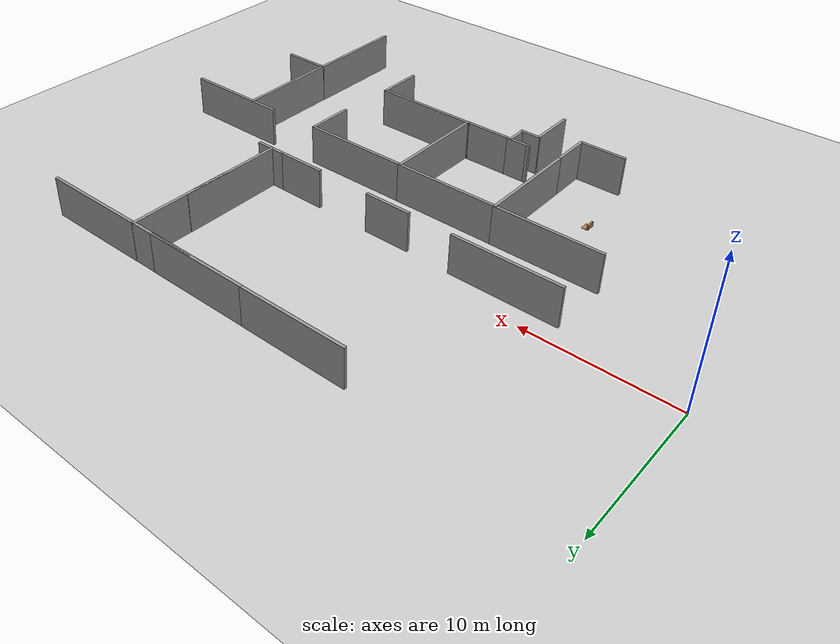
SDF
<sdf version="1.7">
 <world name="default">
  <model name="ground_plane">
   <static>1</static>
   <link name="link">
    <collision name="collision">
     <geometry><plane><normal>0 0 1</normal><size>100 100</size></plane></geometry>
     <surface>
      <contact><collide_bitmask>65535</collide_bitmask></contact>
      <friction><ode><mu>100</mu><mu2>50</mu2></ode></friction>
     </surface>
    </collision>
    <visual name="visual">
     <cast_shadows>0</cast_shadows>
     <geometry><plane><normal>0 0 1</normal><size>100 100</size></plane></geometry>
     <material>
      <script><uri>file://media/materials/scripts/gazebo.material</uri><name>Gazebo/Grey</name></script>
     </material>
    </visual>
   </link>
  </model>
  <model name="grey_wall_clone_1">
   <static>1</static>
   <link name="link">
    <pose>0 0 1.4 0 -0 0</pose>
    <collision name="collision"><geometry><box><size>7.5 0.2 2.8</size></box></geometry></collision>
    <visual name="visual">
     <cast_shadows>0</cast_shadows>
     <geometry><box><size>7.5 0.2 2.8</size></box></geometry>
     <material>
      <script>
       <uri>model://grey_wall/materials/scripts</uri>
       <uri>model://grey_wall/materials/textures</uri>
       <name>vrc/grey_wall</name>
      </script>
     </material>
    </visual>
   </link>
   <pose>17.6261 9.8454 0 0 -0 0</pose>
  </model>
  <model name="grey_wall_clone_1_clone_2">
   <static>1</static>
   <link name="link">
    <pose>0 0 1.4 0 -0 0</pose>
    <collision name="collision"><geometry><box><size>7.5 0.2 2.8</size></box></geometry></collision>
    <visual name="visual">
     <cast_shadows>0</cast_shadows>
     <geometry><box><size>7.5 0.2 2.8</size></box></geometry>
     <material>
      <script>
       <uri>model://grey_wall/materials/scripts</uri>
       <uri>model://grey_wall/materials/textures</uri>
       <name>vrc/grey_wall</name>
      </script>
     </material>
    </visual>
   </link>
   <pose>24.9982 9.83483 0 0 -0 0</pose>
  </model>
  <model name="grey_wall_clone_1_clone_clone">
   <static>1</static>
   <link name="link">
    <pose>0 0 1.4 0 -0 0</pose>
    <collision name="collision"><geometry><box><size>7.5 0.2 2.8</size></box></geometry></collision>
    <visual name="visual">
     <cast_shadows>0</cast_shadows>
     <geometry><box><size>7.5 0.2 2.8</size></box></geometry>
     <material>
      <script>
       <uri>model://grey_wall/materials/scripts</uri>
       <uri>model://grey_wall/materials/textures</uri>
       <name>vrc/grey_wall</name>
      </script>
     </material>
    </visual>
   </link>
   <pose>11.8089 -5.52914 0 0 -0 0</pose>
  </model>
  <model name="grey_wall_clone_2_clone_clone_clone_1">
   <static>1</static>
   <link name="link">
    <pose>0 0 1.4 0 -0 0</pose>
    <collision name="collision"><geometry><box><size>7.5 0.2 2.8</size></box></geometry></collision>
    <visual name="visual">
     <cast_shadows>0</cast_shadows>
     <geometry><box><size>7.5 0.2 2.8</size></box></geometry>
     <material>
      <script>
       <uri>model://grey_wall/materials/scripts</uri>
       <uri>model://grey_wall/materials/textures</uri>
       <name>vrc/grey_wall</name>
      </script>
     </material>
    </visual>
   </link>
   <pose>15.4556 -9.202 0 0 0 -1.5708</pose>
  </model>
  <model name="grey_wall_clone_2_clone_clone_clone_2">
   <static>1</static>
   <link name="link">
    <pose>0 0 1.4 0 -0 0</pose>
    <collision name="collision"><geometry><box><size>7.5 0.2 2.8</size></box></geometry></collision>
    <visual name="visual">
     <cast_shadows>0</cast_shadows>
     <geometry><box><size>7.5 0.2 2.8</size></box></geometry>
     <material>
      <script>
       <uri>model://grey_wall/materials/scripts</uri>
       <uri>model://grey_wall/materials/textures</uri>
       <name>vrc/grey_wall</name>
      </script>
     </material>
    </visual>
   </link>
   <pose>15.4624 -12.0058 0 0 0 -1.5708</pose>
  </model>
  <model name="grey_wall_clone_1_clone_clone_clone">
   <static>1</static>
   <link name="link">
    <pose>0 0 1.4 0 -0 0</pose>
    <collision name="collision"><geometry><box><size>7.5 0.2 2.8</size></box></geometry></collision>
    <visual name="visual">
     <cast_shadows>0</cast_shadows>
     <geometry><box><size>7.5 0.2 2.8</size></box></geometry>
     <material>
      <script>
       <uri>model://grey_wall/materials/scripts</uri>
       <uri>model://grey_wall/materials/textures</uri>
       <name>vrc/grey_wall</name>
      </script>
     </material>
    </visual>
   </link>
   <pose>19.0833 -5.54452 0 0 -0 0</pose>
  </model>
  <model name="grey_wall_clone_2_clone_clone_clone_1_clone">
   <static>1</static>
   <link name="link">
    <pose>0 0 1.4 0 -0 0</pose>
    <collision name="collision"><geometry><box><size>7.5 0.2 2.8</size></box></geometry></collision>
    <visual name="visual">
     <cast_shadows>0</cast_shadows>
     <geometry><box><size>7.5 0.2 2.8</size></box></geometry>
     <material>
      <script>
       <uri>model://grey_wall/materials/scripts</uri>
       <uri>model://grey_wall/materials/textures</uri>
       <name>vrc/grey_wall</name>
      </script>
     </material>
    </visual>
   </link>
   <pose>22.7127 -9.30618 0 0 0 -1.5708</pose>
  </model>
  <model name="half_grey_wall_clone_0_clone_0">
   <link name="link">
    <pose>0 0 1.4 0 -0 0</pose>
    <inertial>
     <mass>1</mass>
     <inertia><ixx>1</ixx><ixy>0</ixy><ixz>0</ixz><iyy>1</iyy><iyz>0</iyz><izz>1</izz></inertia>
    </inertial>
    <visual name="visual">
     <cast_shadows>0</cast_shadows>
     <geometry><box><size>3.3 0.2 2.8</size></box></geometry>
     <material>
      <script>
       <uri>model://grey_wall/materials/scripts</uri>
       <uri>model://grey_wall/materials/textures</uri>
       <name>vrc/grey_wall</name>
      </script>
      <shader type="pixel"><normal_map>__default__</normal_map></shader>
      <ambient>1 1 1 1</ambient>
      <diffuse>1 1 1 1</diffuse>
      <specular>0 0 0 1</specular>
      <emissive>0 0 0 1</emissive>
     </material>
    </visual>
    <collision name="collision">
     <geometry><box><size>7.5 0.2 2.8</size></box></geometry>
     <surface>
      <friction>
       <ode><mu>1</mu><mu2>1</mu2><fdir1>0 0 0</fdir1><slip1>0</slip1><slip2>0</slip2></ode>
       <torsional>
        <coefficient>1</coefficient>
        <patch_radius>0</patch_radius>
        <surface_radius>0</surface_radius>
        <use_patch_radius>1</use_patch_radius>
        <ode><slip>0</slip></ode>
       </torsional>
      </friction>
      <bounce><restitution_coefficient>0</restitution_coefficient><threshold>1e+06</threshold></bounce>
      <contact>
       <collide_without_contact>0</collide_without_contact>
       <collide_without_contact_bitmask>1</collide_without_contact_bitmask>
       <collide_bitmask>1</collide_bitmask>
       <ode>
        <soft_cfm>0</soft_cfm>
        <soft_erp>0.2</soft_erp>
        <kp>1e+13</kp>
        <kd>1</kd>
        <max_vel>0.01</max_vel>
        <min_depth>0</min_depth>
       </ode>
       <bullet>
        <split_impulse>1</split_impulse>
        <split_impulse_penetration_threshold>-0.01</split_impulse_penetration_threshold>
        <soft_cfm>0</soft_cfm>
        <soft_erp>0.2</soft_erp>
        <kp>1e+13</kp>
        <kd>1</kd>
       </bullet>
      </contact>
     </surface>
    </collision>
   </link>
   <static>1</static>
   <pose>21.1071 -12.9684 0 0 -0 0</pose>
  </model>
  <model name="grey_wall_clone_1_clone_clone_clone_clone">
   <static>1</static>
   <link name="link">
    <pose>0 0 1.4 0 -0 0</pose>
    <collision name="collision"><geometry><box><size>7.5 0.2 2.8</size></box></geometry></collision>
    <visual name="visual">
     <cast_shadows>0</cast_shadows>
     <geometry><box><size>7.5 0.2 2.8</size></box></geometry>
     <material>
      <script>
       <uri>model://grey_wall/materials/scripts</uri>
       <uri>model://grey_wall/materials/textures</uri>
       <name>vrc/grey_wall</name>
      </script>
     </material>
    </visual>
   </link>
   <pose>26.5144 -5.5539 0 0 -0 0</pose>
  </model>
  <model name="grey_wall_clone_1_clone_clone_clone_clone_clone">
   <static>1</static>
   <link name="link">
    <pose>0 0 1.4 0 -0 0</pose>
    <collision name="collision"><geometry><box><size>7.5 0.2 2.8</size></box></geometry></collision>
    <visual name="visual">
     <cast_shadows>0</cast_shadows>
     <geometry><box><size>7.5 0.2 2.8</size></box></geometry>
     <material>
      <script>
       <uri>model://grey_wall/materials/scripts</uri>
       <uri>model://grey_wall/materials/textures</uri>
       <name>vrc/grey_wall</name>
      </script>
     </material>
    </visual>
   </link>
   <pose>26.2777 -12.9529 0 0 -0 0</pose>
  </model>
  <model name="grey_wall_clone_1_clone_2_clone">
   <static>1</static>
   <link name="link">
    <pose>0 0 1.4 0 -0 0</pose>
    <collision name="collision"><geometry><box><size>7.5 0.2 2.8</size></box></geometry></collision>
    <visual name="visual">
     <cast_shadows>0</cast_shadows>
     <geometry><box><size>7.5 0.2 2.8</size></box></geometry>
     <material>
      <script>
       <uri>model://grey_wall/materials/scripts</uri>
       <uri>model://grey_wall/materials/textures</uri>
       <name>vrc/grey_wall</name>
      </script>
     </material>
    </visual>
   </link>
   <pose>26.6844 9.82085 0 0 -0 0</pose>
  </model>
  <model name="grey_wall_clone_2_clone_clone_clone_1_clone_clone_0">
   <static>1</static>
   <link name="link">
    <pose>0 0 1.4 0 -0 0</pose>
    <collision name="collision"><geometry><box><size>7.5 0.2 2.8</size></box></geometry></collision>
    <visual name="visual">
     <cast_shadows>0</cast_shadows>
     <geometry><box><size>7.5 0.2 2.8</size></box></geometry>
     <material>
      <script>
       <uri>model://grey_wall/materials/scripts</uri>
       <uri>model://grey_wall/materials/textures</uri>
       <name>vrc/grey_wall</name>
      </script>
     </material>
    </visual>
   </link>
   <pose>30.3377 6.16971 0 0 0 -1.5708</pose>
  </model>
  <model name="grey_wall_clone_2_clone_clone_clone_1_clone_clone_0_clone">
   <static>1</static>
   <link name="link">
    <pose>0 0 1.4 0 -0 0</pose>
    <collision name="collision"><geometry><box><size>7.5 0.2 2.8</size></box></geometry></collision>
    <visual name="visual">
     <cast_shadows>0</cast_shadows>
     <geometry><box><size>7.5 0.2 2.8</size></box></geometry>
     <material>
      <script>
       <uri>model://grey_wall/materials/scripts</uri>
       <uri>model://grey_wall/materials/textures</uri>
       <name>vrc/grey_wall</name>
      </script>
     </material>
    </visual>
   </link>
   <pose>30.3126 2.01477 0 0 0 -1.5708</pose>
  </model>
  <model name="grey_wall_clone_2_clone_clone_clone_1_clone_clone_0_clone_clone">
   <static>1</static>
   <link name="link">
    <pose>0 0 1.4 0 -0 0</pose>
    <collision name="collision"><geometry><box><size>7.5 0.2 2.8</size></box></geometry></collision>
    <visual name="visual">
     <cast_shadows>0</cast_shadows>
     <geometry><box><size>7.5 0.2 2.8</size></box></geometry>
     <material>
      <script>
       <uri>model://grey_wall/materials/scripts</uri>
       <uri>model://grey_wall/materials/textures</uri>
       <name>vrc/grey_wall</name>
      </script>
     </material>
    </visual>
   </link>
   <pose>36.0398 -9.16876 0 0 0 -1.5708</pose>
  </model>
  <model name="grey_wall_clone_1_clone_2_clone_clone">
   <static>1</static>
   <link name="link">
    <pose>0 0 1.4 0 -0 0</pose>
    <collision name="collision"><geometry><box><size>7.5 0.2 2.8</size></box></geometry></collision>
    <visual name="visual">
     <cast_shadows>0</cast_shadows>
     <geometry><box><size>7.5 0.2 2.8</size></box></geometry>
     <material>
      <script>
       <uri>model://grey_wall/materials/scripts</uri>
       <uri>model://grey_wall/materials/textures</uri>
       <name>vrc/grey_wall</name>
      </script>
     </material>
    </visual>
   </link>
   <pose>34.1518 9.82952 0 0 -0 0</pose>
  </model>
  <model name="grey_wall_clone_2_clone_clone_clone_1_clone_clone_0_clone_clone_clone">
   <static>1</static>
   <link name="link">
    <pose>0 0 1.4 0 -0 0</pose>
    <collision name="collision"><geometry><box><size>7.5 0.2 2.8</size></box></geometry></collision>
    <visual name="visual">
     <cast_shadows>0</cast_shadows>
     <geometry><box><size>7.5 0.2 2.8</size></box></geometry>
     <material>
      <script>
       <uri>model://grey_wall/materials/scripts</uri>
       <uri>model://grey_wall/materials/textures</uri>
       <name>vrc/grey_wall</name>
      </script>
     </material>
    </visual>
   </link>
   <pose>36.0239 -16.5759 0 0 0 -1.5708</pose>
  </model>
  <model name="fixed_half_clone_9">
   <link name="link">
    <pose>0 0 1.4 0 -0 0</pose>
    <inertial>
     <mass>1</mass>
     <inertia><ixx>1</ixx><ixy>0</ixy><ixz>0</ixz><iyy>1</iyy><iyz>0</iyz><izz>1</izz></inertia>
    </inertial>
    <visual name="visual">
     <cast_shadows>0</cast_shadows>
     <geometry><box><size>3.3 0.2 2.8</size></box></geometry>
     <material>
      <script>
       <uri>model://grey_wall/materials/scripts</uri>
       <uri>model://grey_wall/materials/textures</uri>
       <name>vrc/grey_wall</name>
      </script>
      <shader type="pixel"><normal_map>__default__</normal_map></shader>
      <ambient>1 1 1 1</ambient>
      <diffuse>1 1 1 1</diffuse>
      <specular>0 0 0 1</specular>
      <emissive>0 0 0 1</emissive>
     </material>
    </visual>
    <collision name="collision">
     <geometry><box><size>3.3 0.2 2.8</size></box></geometry>
     <surface>
      <friction>
       <ode><mu>1</mu><mu2>1</mu2><fdir1>0 0 0</fdir1><slip1>0</slip1><slip2>0</slip2></ode>
       <torsional>
        <coefficient>1</coefficient>
        <patch_radius>0</patch_radius>
        <surface_radius>0</surface_radius>
        <use_patch_radius>1</use_patch_radius>
        <ode><slip>0</slip></ode>
       </torsional>
      </friction>
      <bounce><restitution_coefficient>0</restitution_coefficient><threshold>1e+06</threshold></bounce>
      <contact>
       <collide_without_contact>0</collide_without_contact>
       <collide_without_contact_bitmask>1</collide_without_contact_bitmask>
       <collide_bitmask>1</collide_bitmask>
       <ode>
        <soft_cfm>0</soft_cfm>
        <soft_erp>0.2</soft_erp>
        <kp>1e+13</kp>
        <kd>1</kd>
        <max_vel>0.01</max_vel>
        <min_depth>0</min_depth>
       </ode>
       <bullet>
        <split_impulse>1</split_impulse>
        <split_impulse_penetration_threshold>-0.01</split_impulse_penetration_threshold>
        <soft_cfm>0</soft_cfm>
        <soft_erp>0.2</soft_erp>
        <kp>1e+13</kp>
        <kd>1</kd>
       </bullet>
      </contact>
     </surface>
    </collision>
   </link>
   <static>1</static>
   <pose>17.9251 -16.0442 0 0 0 -1.5708</pose>
  </model>
  <model name="fixed_half_clone_11">
   <link name="link">
    <pose>0 0 1.4 0 -0 0</pose>
    <inertial>
     <mass>1</mass>
     <inertia><ixx>1</ixx><ixy>0</ixy><ixz>0</ixz><iyy>1</iyy><iyz>0</iyz><izz>1</izz></inertia>
    </inertial>
    <visual name="visual">
     <cast_shadows>0</cast_shadows>
     <geometry><box><size>3.3 0.2 2.8</size></box></geometry>
     <material>
      <script>
       <uri>model://grey_wall/materials/scripts</uri>
       <uri>model://grey_wall/materials/textures</uri>
       <name>vrc/grey_wall</name>
      </script>
      <shader type="pixel"><normal_map>__default__</normal_map></shader>
      <ambient>1 1 1 1</ambient>
      <diffuse>1 1 1 1</diffuse>
      <specular>0 0 0 1</specular>
      <emissive>0 0 0 1</emissive>
     </material>
    </visual>
    <collision name="collision">
     <geometry><box><size>3.3 0.2 2.8</size></box></geometry>
     <surface>
      <friction>
       <ode><mu>1</mu><mu2>1</mu2><fdir1>0 0 0</fdir1><slip1>0</slip1><slip2>0</slip2></ode>
       <torsional>
        <coefficient>1</coefficient>
        <patch_radius>0</patch_radius>
        <surface_radius>0</surface_radius>
        <use_patch_radius>1</use_patch_radius>
        <ode><slip>0</slip></ode>
       </torsional>
      </friction>
      <bounce><restitution_coefficient>0</restitution_coefficient><threshold>1e+06</threshold></bounce>
      <contact>
       <collide_without_contact>0</collide_without_contact>
       <collide_without_contact_bitmask>1</collide_without_contact_bitmask>
       <collide_bitmask>1</collide_bitmask>
       <ode>
        <soft_cfm>0</soft_cfm>
        <soft_erp>0.2</soft_erp>
        <kp>1e+13</kp>
        <kd>1</kd>
        <max_vel>0.01</max_vel>
        <min_depth>0</min_depth>
       </ode>
       <bullet>
        <split_impulse>1</split_impulse>
        <split_impulse_penetration_threshold>-0.01</split_impulse_penetration_threshold>
        <soft_cfm>0</soft_cfm>
        <soft_erp>0.2</soft_erp>
        <kp>1e+13</kp>
        <kd>1</kd>
       </bullet>
      </contact>
     </surface>
    </collision>
   </link>
   <static>1</static>
   <pose>30.188 -7.18227 0 0 0 -1.5708</pose>
  </model>
  <model name="fixed_half_clone_12">
   <link name="link">
    <pose>0 0 1.4 0 -0 0</pose>
    <inertial>
     <mass>1</mass>
     <inertia><ixx>1</ixx><ixy>0</ixy><ixz>0</ixz><iyy>1</iyy><iyz>0</iyz><izz>1</izz></inertia>
    </inertial>
    <visual name="visual">
     <cast_shadows>0</cast_shadows>
     <geometry><box><size>3.3 0.2 2.8</size></box></geometry>
     <material>
      <script>
       <uri>model://grey_wall/materials/scripts</uri>
       <uri>model://grey_wall/materials/textures</uri>
       <name>vrc/grey_wall</name>
      </script>
      <shader type="pixel"><normal_map>__default__</normal_map></shader>
      <ambient>1 1 1 1</ambient>
      <diffuse>1 1 1 1</diffuse>
      <specular>0 0 0 1</specular>
      <emissive>0 0 0 1</emissive>
     </material>
    </visual>
    <collision name="collision">
     <geometry><box><size>3.3 0.2 2.8</size></box></geometry>
     <surface>
      <friction>
       <ode><mu>1</mu><mu2>1</mu2><fdir1>0 0 0</fdir1><slip1>0</slip1><slip2>0</slip2></ode>
       <torsional>
        <coefficient>1</coefficient>
        <patch_radius>0</patch_radius>
        <surface_radius>0</surface_radius>
        <use_patch_radius>1</use_patch_radius>
        <ode><slip>0</slip></ode>
       </torsional>
      </friction>
      <bounce><restitution_coefficient>0</restitution_coefficient><threshold>1e+06</threshold></bounce>
      <contact>
       <collide_without_contact>0</collide_without_contact>
       <collide_without_contact_bitmask>1</collide_without_contact_bitmask>
       <collide_bitmask>1</collide_bitmask>
       <ode>
        <soft_cfm>0</soft_cfm>
        <soft_erp>0.2</soft_erp>
        <kp>1e+13</kp>
        <kd>1</kd>
        <max_vel>0.01</max_vel>
        <min_depth>0</min_depth>
       </ode>
       <bullet>
        <split_impulse>1</split_impulse>
        <split_impulse_penetration_threshold>-0.01</split_impulse_penetration_threshold>
        <soft_cfm>0</soft_cfm>
        <soft_erp>0.2</soft_erp>
        <kp>1e+13</kp>
        <kd>1</kd>
       </bullet>
      </contact>
     </surface>
    </collision>
   </link>
   <static>1</static>
   <pose>29.9162 -14.5557 0 0 0 -1.5708</pose>
  </model>
  <model name="fixed_half_clone_17_clone_9">
   <link name="link">
    <pose>0 0 1.4 0 -0 0</pose>
    <inertial>
     <mass>1</mass>
     <inertia><ixx>1</ixx><ixy>0</ixy><ixz>0</ixz><iyy>1</iyy><iyz>0</iyz><izz>1</izz></inertia>
    </inertial>
    <visual name="visual">
     <cast_shadows>0</cast_shadows>
     <geometry><box><size>3.3 0.2 2.8</size></box></geometry>
     <material>
      <script>
       <uri>model://grey_wall/materials/scripts</uri>
       <uri>model://grey_wall/materials/textures</uri>
       <name>vrc/grey_wall</name>
      </script>
      <shader type="pixel"><normal_map>__default__</normal_map></shader>
      <ambient>1 1 1 1</ambient>
      <diffuse>1 1 1 1</diffuse>
      <specular>0 0 0 1</specular>
      <emissive>0 0 0 1</emissive>
     </material>
    </visual>
    <collision name="collision">
     <geometry><box><size>3.3 0.2 2.8</size></box></geometry>
     <surface>
      <friction>
       <ode><mu>1</mu><mu2>1</mu2><fdir1>0 0 0</fdir1><slip1>0</slip1><slip2>0</slip2></ode>
       <torsional>
        <coefficient>1</coefficient>
        <patch_radius>0</patch_radius>
        <surface_radius>0</surface_radius>
        <use_patch_radius>1</use_patch_radius>
        <ode><slip>0</slip></ode>
       </torsional>
      </friction>
      <bounce><restitution_coefficient>0</restitution_coefficient><threshold>1e+06</threshold></bounce>
      <contact>
       <collide_without_contact>0</collide_without_contact>
       <collide_without_contact_bitmask>1</collide_without_contact_bitmask>
       <collide_bitmask>1</collide_bitmask>
       <ode>
        <soft_cfm>0</soft_cfm>
        <soft_erp>0.2</soft_erp>
        <kp>1e+13</kp>
        <kd>1</kd>
        <max_vel>0.01</max_vel>
        <min_depth>0</min_depth>
       </ode>
       <bullet>
        <split_impulse>1</split_impulse>
        <split_impulse_penetration_threshold>-0.01</split_impulse_penetration_threshold>
        <soft_cfm>0</soft_cfm>
        <soft_erp>0.2</soft_erp>
        <kp>1e+13</kp>
        <kd>1</kd>
       </bullet>
      </contact>
     </surface>
    </collision>
   </link>
   <static>1</static>
   <pose>37.7185 -12.8413 0 0 -0 3.14159</pose>
  </model>
  <model name="grey_wall_clone_1_clone_2_clone_clone_clone_clone_clone">
   <static>1</static>
   <link name="link">
    <pose>0 0 1.4 0 -0 0</pose>
    <collision name="collision"><geometry><box><size>7.5 0.2 2.8</size></box></geometry></collision>
    <visual name="visual">
     <cast_shadows>0</cast_shadows>
     <geometry><box><size>7.5 0.2 2.8</size></box></geometry>
     <material>
      <script>
       <uri>model://grey_wall/materials/scripts</uri>
       <uri>model://grey_wall/materials/textures</uri>
       <name>vrc/grey_wall</name>
      </script>
     </material>
    </visual>
   </link>
   <pose>37.7088 -5.46304 0 0 -0 0</pose>
  </model>
  <model name="half_wall_clone_0_clone_clone_clone_9">
   <link name="link">
    <pose>0 0 1.4 0 -0 0</pose>
    <inertial>
     <mass>1</mass>
     <inertia><ixx>1</ixx><ixy>0</ixy><ixz>0</ixz><iyy>1</iyy><iyz>0</iyz><izz>1</izz></inertia>
    </inertial>
    <visual name="visual">
     <cast_shadows>0</cast_shadows>
     <geometry><box><size>1.5 0.2 2.8</size></box></geometry>
     <material>
      <script>
       <uri>model://grey_wall/materials/scripts</uri>
       <uri>model://grey_wall/materials/textures</uri>
       <name>vrc/grey_wall</name>
      </script>
      <shader type="pixel"><normal_map>__default__</normal_map></shader>
      <ambient>1 1 1 1</ambient>
      <diffuse>1 1 1 1</diffuse>
      <specular>0 0 0 1</specular>
      <emissive>0 0 0 1</emissive>
     </material>
    </visual>
    <collision name="collision">
     <geometry><box><size>1.5 0.2 2.8</size></box></geometry>
     <surface>
      <friction>
       <ode><mu>1</mu><mu2>1</mu2><fdir1>0 0 0</fdir1><slip1>0</slip1><slip2>0</slip2></ode>
       <torsional>
        <coefficient>1</coefficient>
        <patch_radius>0</patch_radius>
        <surface_radius>0</surface_radius>
        <use_patch_radius>1</use_patch_radius>
        <ode><slip>0</slip></ode>
       </torsional>
      </friction>
      <bounce><restitution_coefficient>0</restitution_coefficient><threshold>1e+06</threshold></bounce>
      <contact>
       <collide_without_contact>0</collide_without_contact>
       <collide_without_contact_bitmask>1</collide_without_contact_bitmask>
       <collide_bitmask>1</collide_bitmask>
       <ode>
        <soft_cfm>0</soft_cfm>
        <soft_erp>0.2</soft_erp>
        <kp>1e+13</kp>
        <kd>1</kd>
        <max_vel>0.01</max_vel>
        <min_depth>0</min_depth>
       </ode>
       <bullet>
        <split_impulse>1</split_impulse>
        <split_impulse_penetration_threshold>-0.01</split_impulse_penetration_threshold>
        <soft_cfm>0</soft_cfm>
        <soft_erp>0.2</soft_erp>
        <kp>1e+13</kp>
        <kd>1</kd>
       </bullet>
      </contact>
     </surface>
    </collision>
   </link>
   <static>1</static>
   <pose>19.2261 -13.6716 0 0 -0 1.57079</pose>
  </model>
  <model name="half_wall_clone_0_clone_clone_clone_9_clone">
   <link name="link">
    <pose>0 0 1.4 0 -0 0</pose>
    <inertial>
     <mass>1</mass>
     <inertia><ixx>1</ixx><ixy>0</ixy><ixz>0</ixz><iyy>1</iyy><iyz>0</iyz><izz>1</izz></inertia>
    </inertial>
    <visual name="visual">
     <cast_shadows>0</cast_shadows>
     <geometry><box><size>1.5 0.2 2.8</size></box></geometry>
     <material>
      <script>
       <uri>model://grey_wall/materials/scripts</uri>
       <uri>model://grey_wall/materials/textures</uri>
       <name>vrc/grey_wall</name>
      </script>
      <shader type="pixel"><normal_map>__default__</normal_map></shader>
      <ambient>1 1 1 1</ambient>
      <diffuse>1 1 1 1</diffuse>
      <specular>0 0 0 1</specular>
      <emissive>0 0 0 1</emissive>
     </material>
    </visual>
    <collision name="collision">
     <geometry><box><size>1.5 0.2 2.8</size></box></geometry>
     <surface>
      <friction>
       <ode><mu>1</mu><mu2>1</mu2><fdir1>0 0 0</fdir1><slip1>0</slip1><slip2>0</slip2></ode>
       <torsional>
        <coefficient>1</coefficient>
        <patch_radius>0</patch_radius>
        <surface_radius>0</surface_radius>
        <use_patch_radius>1</use_patch_radius>
        <ode><slip>0</slip></ode>
       </torsional>
      </friction>
      <bounce><restitution_coefficient>0</restitution_coefficient><threshold>1e+06</threshold></bounce>
      <contact>
       <collide_without_contact>0</collide_without_contact>
       <collide_without_contact_bitmask>1</collide_without_contact_bitmask>
       <collide_bitmask>1</collide_bitmask>
       <ode>
        <soft_cfm>0</soft_cfm>
        <soft_erp>0.2</soft_erp>
        <kp>1e+13</kp>
        <kd>1</kd>
        <max_vel>0.01</max_vel>
        <min_depth>0</min_depth>
       </ode>
       <bullet>
        <split_impulse>1</split_impulse>
        <split_impulse_penetration_threshold>-0.01</split_impulse_penetration_threshold>
        <soft_cfm>0</soft_cfm>
        <soft_erp>0.2</soft_erp>
        <kp>1e+13</kp>
        <kd>1</kd>
       </bullet>
      </contact>
     </surface>
    </collision>
   </link>
   <static>1</static>
   <pose>18.7163 -12.9556 0 0 -0 3.14159</pose>
  </model>
  <model name="half_wall_clone_0_clone_clone_clone_9_clone_0">
   <link name="link">
    <pose>0 0 1.4 0 -0 0</pose>
    <inertial>
     <mass>1</mass>
     <inertia><ixx>1</ixx><ixy>0</ixy><ixz>0</ixz><iyy>1</iyy><iyz>0</iyz><izz>1</izz></inertia>
    </inertial>
    <visual name="visual">
     <cast_shadows>0</cast_shadows>
     <geometry><box><size>1.5 0.2 2.8</size></box></geometry>
     <material>
      <script>
       <uri>model://grey_wall/materials/scripts</uri>
       <uri>model://grey_wall/materials/textures</uri>
       <name>vrc/grey_wall</name>
      </script>
      <shader type="pixel"><normal_map>__default__</normal_map></shader>
      <ambient>1 1 1 1</ambient>
      <diffuse>1 1 1 1</diffuse>
      <specular>0 0 0 1</specular>
      <emissive>0 0 0 1</emissive>
     </material>
    </visual>
    <collision name="collision">
     <geometry><box><size>1.5 0.2 2.8</size></box></geometry>
     <surface>
      <friction>
       <ode><mu>1</mu><mu2>1</mu2><fdir1>0 0 0</fdir1><slip1>0</slip1><slip2>0</slip2></ode>
       <torsional>
        <coefficient>1</coefficient>
        <patch_radius>0</patch_radius>
        <surface_radius>0</surface_radius>
        <use_patch_radius>1</use_patch_radius>
        <ode><slip>0</slip></ode>
       </torsional>
      </friction>
      <bounce><restitution_coefficient>0</restitution_coefficient><threshold>1e+06</threshold></bounce>
      <contact>
       <collide_without_contact>0</collide_without_contact>
       <collide_without_contact_bitmask>1</collide_without_contact_bitmask>
       <collide_bitmask>1</collide_bitmask>
       <ode>
        <soft_cfm>0</soft_cfm>
        <soft_erp>0.2</soft_erp>
        <kp>1e+13</kp>
        <kd>1</kd>
        <max_vel>0.01</max_vel>
        <min_depth>0</min_depth>
       </ode>
       <bullet>
        <split_impulse>1</split_impulse>
        <split_impulse_penetration_threshold>-0.01</split_impulse_penetration_threshold>
        <soft_cfm>0</soft_cfm>
        <soft_erp>0.2</soft_erp>
        <kp>1e+13</kp>
        <kd>1</kd>
       </bullet>
      </contact>
     </surface>
    </collision>
   </link>
   <static>1</static>
   <pose>18.4998 -12.9569 0 0 -0 3.14159</pose>
  </model>
  <model name="half_wall_clone_0_clone_clone_clone_9_clone_1">
   <link name="link">
    <pose>0 0 1.4 0 -0 0</pose>
    <inertial>
     <mass>1</mass>
     <inertia><ixx>1</ixx><ixy>0</ixy><ixz>0</ixz><iyy>1</iyy><iyz>0</iyz><izz>1</izz></inertia>
    </inertial>
    <visual name="visual">
     <cast_shadows>0</cast_shadows>
     <geometry><box><size>1.5 0.2 2.8</size></box></geometry>
     <material>
      <script>
       <uri>model://grey_wall/materials/scripts</uri>
       <uri>model://grey_wall/materials/textures</uri>
       <name>vrc/grey_wall</name>
      </script>
      <shader type="pixel"><normal_map>__default__</normal_map></shader>
      <ambient>1 1 1 1</ambient>
      <diffuse>1 1 1 1</diffuse>
      <specular>0 0 0 1</specular>
      <emissive>0 0 0 1</emissive>
     </material>
    </visual>
    <collision name="collision">
     <geometry><box><size>1.5 0.2 2.8</size></box></geometry>
     <surface>
      <friction>
       <ode><mu>1</mu><mu2>1</mu2><fdir1>0 0 0</fdir1><slip1>0</slip1><slip2>0</slip2></ode>
       <torsional>
        <coefficient>1</coefficient>
        <patch_radius>0</patch_radius>
        <surface_radius>0</surface_radius>
        <use_patch_radius>1</use_patch_radius>
        <ode><slip>0</slip></ode>
       </torsional>
      </friction>
      <bounce><restitution_coefficient>0</restitution_coefficient><threshold>1e+06</threshold></bounce>
      <contact>
       <collide_without_contact>0</collide_without_contact>
       <collide_without_contact_bitmask>1</collide_without_contact_bitmask>
       <collide_bitmask>1</collide_bitmask>
       <ode>
        <soft_cfm>0</soft_cfm>
        <soft_erp>0.2</soft_erp>
        <kp>1e+13</kp>
        <kd>1</kd>
        <max_vel>0.01</max_vel>
        <min_depth>0</min_depth>
       </ode>
       <bullet>
        <split_impulse>1</split_impulse>
        <split_impulse_penetration_threshold>-0.01</split_impulse_penetration_threshold>
        <soft_cfm>0</soft_cfm>
        <soft_erp>0.2</soft_erp>
        <kp>1e+13</kp>
        <kd>1</kd>
       </bullet>
      </contact>
     </surface>
    </collision>
   </link>
   <static>1</static>
   <pose>18.5773 -14.3842 0 0 -0 3.14159</pose>
  </model>
  <model name="fixed_half_clone_19_clone">
   <link name="link">
    <pose>0 0 1.4 0 -0 0</pose>
    <inertial>
     <mass>1</mass>
     <inertia><ixx>1</ixx><ixy>0</ixy><ixz>0</ixz><iyy>1</iyy><iyz>0</iyz><izz>1</izz></inertia>
    </inertial>
    <visual name="visual">
     <cast_shadows>0</cast_shadows>
     <geometry><box><size>3.3 0.2 2.8</size></box></geometry>
     <material>
      <script>
       <uri>model://grey_wall/materials/scripts</uri>
       <uri>model://grey_wall/materials/textures</uri>
       <name>vrc/grey_wall</name>
      </script>
      <shader type="pixel"><normal_map>__default__</normal_map></shader>
      <ambient>1 1 1 1</ambient>
      <diffuse>1 1 1 1</diffuse>
      <specular>0 0 0 1</specular>
      <emissive>0 0 0 1</emissive>
     </material>
    </visual>
    <collision name="collision">
     <geometry><box><size>3.3 0.2 2.8</size></box></geometry>
     <surface>
      <friction>
       <ode><mu>1</mu><mu2>1</mu2><fdir1>0 0 0</fdir1><slip1>0</slip1><slip2>0</slip2></ode>
       <torsional>
        <coefficient>1</coefficient>
        <patch_radius>0</patch_radius>
        <surface_radius>0</surface_radius>
        <use_patch_radius>1</use_patch_radius>
        <ode><slip>0</slip></ode>
       </torsional>
      </friction>
      <bounce><restitution_coefficient>0</restitution_coefficient><threshold>1e+06</threshold></bounce>
      <contact>
       <collide_without_contact>0</collide_without_contact>
       <collide_without_contact_bitmask>1</collide_without_contact_bitmask>
       <collide_bitmask>1</collide_bitmask>
       <ode>
        <soft_cfm>0</soft_cfm>
        <soft_erp>0.2</soft_erp>
        <kp>1e+13</kp>
        <kd>1</kd>
        <max_vel>0.01</max_vel>
        <min_depth>0</min_depth>
       </ode>
       <bullet>
        <split_impulse>1</split_impulse>
        <split_impulse_penetration_threshold>-0.01</split_impulse_penetration_threshold>
        <soft_cfm>0</soft_cfm>
        <soft_erp>0.2</soft_erp>
        <kp>1e+13</kp>
        <kd>1</kd>
       </bullet>
      </contact>
     </surface>
    </collision>
   </link>
   <static>1</static>
   <pose>29.8404 -1.64376 0 0 -0 3.14159</pose>
  </model>
  <model name="fixed_half_clone_19_clone_0">
   <link name="link">
    <pose>0 0 1.4 0 -0 0</pose>
    <inertial>
     <mass>1</mass>
     <inertia><ixx>1</ixx><ixy>0</ixy><ixz>0</ixz><iyy>1</iyy><iyz>0</iyz><izz>1</izz></inertia>
    </inertial>
    <visual name="visual">
     <cast_shadows>0</cast_shadows>
     <geometry><box><size>3.3 0.2 2.8</size></box></geometry>
     <material>
      <script>
       <uri>model://grey_wall/materials/scripts</uri>
       <uri>model://grey_wall/materials/textures</uri>
       <name>vrc/grey_wall</name>
      </script>
      <shader type="pixel"><normal_map>__default__</normal_map></shader>
      <ambient>1 1 1 1</ambient>
      <diffuse>1 1 1 1</diffuse>
      <specular>0 0 0 1</specular>
      <emissive>0 0 0 1</emissive>
     </material>
    </visual>
    <collision name="collision">
     <geometry><box><size>3.3 0.2 2.8</size></box></geometry>
     <surface>
      <friction>
       <ode><mu>1</mu><mu2>1</mu2><fdir1>0 0 0</fdir1><slip1>0</slip1><slip2>0</slip2></ode>
       <torsional>
        <coefficient>1</coefficient>
        <patch_radius>0</patch_radius>
        <surface_radius>0</surface_radius>
        <use_patch_radius>1</use_patch_radius>
        <ode><slip>0</slip></ode>
       </torsional>
      </friction>
      <bounce><restitution_coefficient>0</restitution_coefficient><threshold>1e+06</threshold></bounce>
      <contact>
       <collide_without_contact>0</collide_without_contact>
       <collide_without_contact_bitmask>1</collide_without_contact_bitmask>
       <collide_bitmask>1</collide_bitmask>
       <ode>
        <soft_cfm>0</soft_cfm>
        <soft_erp>0.2</soft_erp>
        <kp>1e+13</kp>
        <kd>1</kd>
        <max_vel>0.01</max_vel>
        <min_depth>0</min_depth>
       </ode>
       <bullet>
        <split_impulse>1</split_impulse>
        <split_impulse_penetration_threshold>-0.01</split_impulse_penetration_threshold>
        <soft_cfm>0</soft_cfm>
        <soft_erp>0.2</soft_erp>
        <kp>1e+13</kp>
        <kd>1</kd>
       </bullet>
      </contact>
     </surface>
    </collision>
   </link>
   <static>1</static>
   <pose>27.6911 -1.63962 0 0 -0 3.14159</pose>
  </model>
  <model name="fixed_half_clone_19_clone_1">
   <link name="link">
    <pose>0 0 1.4 0 -0 0</pose>
    <inertial>
     <mass>1</mass>
     <inertia><ixx>1</ixx><ixy>0</ixy><ixz>0</ixz><iyy>1</iyy><iyz>0</iyz><izz>1</izz></inertia>
    </inertial>
    <visual name="visual">
     <cast_shadows>0</cast_shadows>
     <geometry><box><size>3.3 0.2 2.8</size></box></geometry>
     <material>
      <script>
       <uri>model://grey_wall/materials/scripts</uri>
       <uri>model://grey_wall/materials/textures</uri>
       <name>vrc/grey_wall</name>
      </script>
      <shader type="pixel"><normal_map>__default__</normal_map></shader>
      <ambient>1 1 1 1</ambient>
      <diffuse>1 1 1 1</diffuse>
      <specular>0 0 0 1</specular>
      <emissive>0 0 0 1</emissive>
     </material>
    </visual>
    <collision name="collision">
     <geometry><box><size>3.3 0.2 2.8</size></box></geometry>
     <surface>
      <friction>
       <ode><mu>1</mu><mu2>1</mu2><fdir1>0 0 0</fdir1><slip1>0</slip1><slip2>0</slip2></ode>
       <torsional>
        <coefficient>1</coefficient>
        <patch_radius>0</patch_radius>
        <surface_radius>0</surface_radius>
        <use_patch_radius>1</use_patch_radius>
        <ode><slip>0</slip></ode>
       </torsional>
      </friction>
      <bounce><restitution_coefficient>0</restitution_coefficient><threshold>1e+06</threshold></bounce>
      <contact>
       <collide_without_contact>0</collide_without_contact>
       <collide_without_contact_bitmask>1</collide_without_contact_bitmask>
       <collide_bitmask>1</collide_bitmask>
       <ode>
        <soft_cfm>0</soft_cfm>
        <soft_erp>0.2</soft_erp>
        <kp>1e+13</kp>
        <kd>1</kd>
        <max_vel>0.01</max_vel>
        <min_depth>0</min_depth>
       </ode>
       <bullet>
        <split_impulse>1</split_impulse>
        <split_impulse_penetration_threshold>-0.01</split_impulse_penetration_threshold>
        <soft_cfm>0</soft_cfm>
        <soft_erp>0.2</soft_erp>
        <kp>1e+13</kp>
        <kd>1</kd>
       </bullet>
      </contact>
     </surface>
    </collision>
   </link>
   <static>1</static>
   <pose>20.4936 -1.56335 0 0 -0 3.14159</pose>
  </model>
  <model name="grey_wall_clone_1_clone">
   <static>1</static>
   <link name="link">
    <pose>0 0 1.4 0 -0 0</pose>
    <collision name="collision"><geometry><box><size>7.5 0.2 2.8</size></box></geometry></collision>
    <visual name="visual">
     <cast_shadows>0</cast_shadows>
     <geometry><box><size>7.5 0.2 2.8</size></box></geometry>
     <material>
      <script>
       <uri>model://grey_wall/materials/scripts</uri>
       <uri>model://grey_wall/materials/textures</uri>
       <name>vrc/grey_wall</name>
      </script>
     </material>
    </visual>
   </link>
   <pose>11.9609 -1.45895 0 0 -0 0</pose>
  </model>
  <model name="fixed_half_clone_19_clone_1_clone">
   <link name="link">
    <pose>0 0 1.4 0 -0 0</pose>
    <inertial>
     <mass>1</mass>
     <inertia><ixx>1</ixx><ixy>0</ixy><ixz>0</ixz><iyy>1</iyy><iyz>0</iyz><izz>1</izz></inertia>
    </inertial>
    <visual name="visual">
     <cast_shadows>0</cast_shadows>
     <geometry><box><size>3.3 0.2 2.8</size></box></geometry>
     <material>
      <script>
       <uri>model://grey_wall/materials/scripts</uri>
       <uri>model://grey_wall/materials/textures</uri>
       <name>vrc/grey_wall</name>
      </script>
      <shader type="pixel"><normal_map>__default__</normal_map></shader>
      <ambient>1 1 1 1</ambient>
      <diffuse>1 1 1 1</diffuse>
      <specular>0 0 0 1</specular>
      <emissive>0 0 0 1</emissive>
     </material>
    </visual>
    <collision name="collision">
     <geometry><box><size>3.3 0.2 2.8</size></box></geometry>
     <surface>
      <friction>
       <ode><mu>1</mu><mu2>1</mu2><fdir1>0 0 0</fdir1><slip1>0</slip1><slip2>0</slip2></ode>
       <torsional>
        <coefficient>1</coefficient>
        <patch_radius>0</patch_radius>
        <surface_radius>0</surface_radius>
        <use_patch_radius>1</use_patch_radius>
        <ode><slip>0</slip></ode>
       </torsional>
      </friction>
      <bounce><restitution_coefficient>0</restitution_coefficient><threshold>1e+06</threshold></bounce>
      <contact>
       <collide_without_contact>0</collide_without_contact>
       <collide_without_contact_bitmask>1</collide_without_contact_bitmask>
       <collide_bitmask>1</collide_bitmask>
       <ode>
        <soft_cfm>0</soft_cfm>
        <soft_erp>0.2</soft_erp>
        <kp>1e+13</kp>
        <kd>1</kd>
        <max_vel>0.01</max_vel>
        <min_depth>0</min_depth>
       </ode>
       <bullet>
        <split_impulse>1</split_impulse>
        <split_impulse_penetration_threshold>-0.01</split_impulse_penetration_threshold>
        <soft_cfm>0</soft_cfm>
        <soft_erp>0.2</soft_erp>
        <kp>1e+13</kp>
        <kd>1</kd>
       </bullet>
      </contact>
     </surface>
    </collision>
   </link>
   <static>1</static>
   <pose>13.8727 -15.6694 0 0 -0 3.14159</pose>
  </model>
  <model name="wooden_case">
   <link name="base">
    <pose>0 0 0.024 0 -0 0</pose>
    <inertial>
     <pose>-0.022184 0 0.171592 0 -0 0</pose>
     <mass>3.96264</mass>
     <inertia>
      <ixx>0.213536</ixx>
      <ixy>0</ixy>
      <ixz>0.000779377</ixz>
      <iyy>0.0708943</iyy>
      <iyz>0</iyz>
      <izz>0.154604</izz>
     </inertia>
    </inertial>
    <collision name="collision_back">
     <pose>-0.053975 0 0.1778 0 -0 0</pose>
     <geometry><box><size>0.01905 0.5461 0.3175</size></box></geometry>
     <surface>
      <contact>
       <poissons_ratio>0.347</poissons_ratio>
       <elastic_modulus>8.8e+09</elastic_modulus>
       <ode><kp>100000</kp><kd>100</kd><max_vel>100</max_vel><min_depth>0.001</min_depth></ode>
      </contact>
      <friction>
       <torsional>
        <coefficient>1</coefficient>
        <use_patch_radius>0</use_patch_radius>
        <surface_radius>0.01</surface_radius>
       </torsional>
      </friction>
     </surface>
    </collision>
    <visual name="visual_back">
     <pose>-0.053975 0 0.1778 0 -0 0</pose>
     <geometry><box><size>0.01905 0.5461 0.3175</size></box></geometry>
     <material>
      <script><uri>file://media/materials/scripts/gazebo.material</uri><name>Gazebo/Wood</name></script>
     </material>
    </visual>
    <collision name="collision_bottom">
     <pose>0 0 0.009525 0 -0 0</pose>
     <geometry><box><size>0.127 0.5842 0.01905</size></box></geometry>
     <surface>
      <contact>
       <poissons_ratio>0.347</poissons_ratio>
       <elastic_modulus>8.8e+09</elastic_modulus>
       <ode><kp>100000</kp><kd>100</kd><max_vel>100</max_vel><min_depth>0.001</min_depth></ode>
      </contact>
      <friction>
       <torsional>
        <coefficient>1</coefficient>
        <use_patch_radius>0</use_patch_radius>
        <surface_radius>0.01</surface_radius>
       </torsional>
      </friction>
     </surface>
    </collision>
    <visual name="visual_bottom">
     <pose>0 0 0.009525 0 -0 0</pose>
     <geometry><box><size>0.127 0.5842 0.01905</size></box></geometry>
     <material>
      <script><uri>file://media/materials/scripts/gazebo.material</uri><name>Gazebo/Wood</name></script>
     </material>
    </visual>
    <collision name="collision_top">
     <pose>0 0 0.346075 0 -0 0</pose>
     <geometry><box><size>0.127 0.5842 0.01905</size></box></geometry>
     <surface>
      <contact>
       <poissons_ratio>0.347</poissons_ratio>
       <elastic_modulus>8.8e+09</elastic_modulus>
       <ode><kp>100000</kp><kd>100</kd><max_vel>100</max_vel><min_depth>0.001</min_depth></ode>
      </contact>
      <friction>
       <torsional>
        <coefficient>1</coefficient>
        <use_patch_radius>0</use_patch_radius>
        <surface_radius>0.01</surface_radius>
       </torsional>
      </friction>
     </surface>
    </collision>
    <visual name="visual_top">
     <pose>0 0 0.346075 0 -0 0</pose>
     <geometry><box><size>0.127 0.5842 0.01905</size></box></geometry>
     <material>
      <script><uri>file://media/materials/scripts/gazebo.material</uri><name>Gazebo/Wood</name></script>
     </material>
    </visual>
    <collision name="collision_left">
     <pose>0 -0.282575 0.1778 0 -0 0</pose>
     <geometry><box><size>0.127 0.01905 0.3175</size></box></geometry>
     <surface>
      <contact>
       <poissons_ratio>0.347</poissons_ratio>
       <elastic_modulus>8.8e+09</elastic_modulus>
       <ode><kp>100000</kp><kd>100</kd><max_vel>100</max_vel><min_depth>0.001</min_depth></ode>
      </contact>
      <friction>
       <torsional>
        <coefficient>1</coefficient>
        <use_patch_radius>0</use_patch_radius>
        <surface_radius>0.01</surface_radius>
       </torsional>
      </friction>
     </surface>
    </collision>
    <visual name="visual_left">
     <pose>0 -0.282575 0.1778 0 -0 0</pose>
     <geometry><box><size>0.127 0.01905 0.3175</size></box></geometry>
     <material>
      <script><uri>file://media/materials/scripts/gazebo.material</uri><name>Gazebo/Wood</name></script>
     </material>
    </visual>
    <collision name="collision_right">
     <pose>0 0.282575 0.1778 0 -0 0</pose>
     <geometry><box><size>0.127 0.01905 0.3175</size></box></geometry>
     <surface>
      <contact>
       <poissons_ratio>0.347</poissons_ratio>
       <elastic_modulus>8.8e+09</elastic_modulus>
       <ode><kp>100000</kp><kd>100</kd><max_vel>100</max_vel><min_depth>0.001</min_depth></ode>
      </contact>
      <friction>
       <torsional>
        <coefficient>1</coefficient>
        <use_patch_radius>0</use_patch_radius>
        <surface_radius>0.01</surface_radius>
       </torsional>
      </friction>
     </surface>
    </collision>
    <visual name="visual_right">
     <pose>0 0.282575 0.1778 0 -0 0</pose>
     <geometry><box><size>0.127 0.01905 0.3175</size></box></geometry>
     <material>
      <script><uri>file://media/materials/scripts/gazebo.material</uri><name>Gazebo/Wood</name></script>
     </material>
    </visual>
    <collision name="collision_block_left">
     <pose>0.0095 -0.2151 -0.012 0 -0 0</pose>
     <geometry><box><size>0.108 0.05 0.024</size></box></geometry>
     <surface>
      <contact>
       <poissons_ratio>0.347</poissons_ratio>
       <elastic_modulus>8.8e+09</elastic_modulus>
       <ode><kp>100000</kp><kd>100</kd><max_vel>100</max_vel><min_depth>0.001</min_depth></ode>
      </contact>
      <friction>
       <torsional>
        <coefficient>1</coefficient>
        <use_patch_radius>0</use_patch_radius>
        <surface_radius>0.01</surface_radius>
       </torsional>
      </friction>
     </surface>
    </collision>
    <visual name="visual_block_left">
     <pose>0.0095 -0.2151 -0.012 0 -0 0</pose>
     <geometry><box><size>0.108 0.05 0.024</size></box></geometry>
     <material>
      <script><uri>file://media/materials/scripts/gazebo.material</uri><name>Gazebo/Wood</name></script>
     </material>
    </visual>
    <collision name="collision_block_right">
     <pose>0.0095 0.2151 -0.012 0 -0 0</pose>
     <geometry><box><size>0.108 0.05 0.024</size></box></geometry>
     <surface>
      <contact>
       <poissons_ratio>0.347</poissons_ratio>
       <elastic_modulus>8.8e+09</elastic_modulus>
       <ode><kp>100000</kp><kd>100</kd><max_vel>100</max_vel><min_depth>0.001</min_depth></ode>
      </contact>
      <friction>
       <torsional>
        <coefficient>1</coefficient>
        <use_patch_radius>0</use_patch_radius>
        <surface_radius>0.01</surface_radius>
       </torsional>
      </friction>
     </surface>
    </collision>
    <visual name="visual_block_right">
     <pose>0.0095 0.2151 -0.012 0 -0 0</pose>
     <geometry><box><size>0.108 0.05 0.024</size></box></geometry>
     <material>
      <script><uri>file://media/materials/scripts/gazebo.material</uri><name>Gazebo/Wood</name></script>
     </material>
    </visual>
   </link>
   <link name="lid">
    <pose>0.243775 0 0.009525 0 -0 0</pose>
    <inertial>
     <mass>1.97874</mass>
     <inertia>
      <ixx>0.0563367</ixx>
      <ixy>0</ixy>
      <ixz>0</ixz>
      <iyy>0.020911</iyy>
      <iyz>0</iyz>
      <izz>0.0771281</izz>
     </inertia>
    </inertial>
    <collision name="collision">
     <geometry><box><size>0.3556 0.5842 0.01905</size></box></geometry>
     <surface>
      <contact>
       <poissons_ratio>0.347</poissons_ratio>
       <elastic_modulus>8.8e+09</elastic_modulus>
       <ode><kp>100000</kp><kd>100</kd><max_vel>100</max_vel><min_depth>0.001</min_depth></ode>
      </contact>
      <friction>
       <torsional>
        <coefficient>1</coefficient>
        <use_patch_radius>0</use_patch_radius>
        <surface_radius>0.01</surface_radius>
       </torsional>
      </friction>
     </surface>
    </collision>
    <visual name="visual">
     <geometry><box><size>0.3556 0.5842 0.01905</size></box></geometry>
     <material>
      <script><uri>file://media/materials/scripts/gazebo.material</uri><name>Gazebo/Wood</name></script>
     </material>
    </visual>
    <visual name="tee_nut_1">
     <pose>0.122 -0.216 0 0 -0 0</pose>
     <geometry><cylinder><radius>0.00635</radius><length>0.0192405</length></cylinder></geometry>
     <material>
      <script><uri>file://media/materials/scripts/gazebo.material</uri><name>Gazebo/Grey</name></script>
     </material>
    </visual>
    <visual name="tee_nut_2">
     <pose>0.122 -0.088 0 0 -0 0</pose>
     <geometry><cylinder><radius>0.00635</radius><length>0.0192405</length></cylinder></geometry>
     <material>
      <script><uri>file://media/materials/scripts/gazebo.material</uri><name>Gazebo/Grey</name></script>
     </material>
    </visual>
    <visual name="tee_nut_3">
     <pose>0.122 0.088 0 0 -0 0</pose>
     <geometry><cylinder><radius>0.00635</radius><length>0.0192405</length></cylinder></geometry>
     <material>
      <script><uri>file://media/materials/scripts/gazebo.material</uri><name>Gazebo/Grey</name></script>
     </material>
    </visual>
    <visual name="tee_nut_4">
     <pose>0.122 0.216 0 0 -0 0</pose>
     <geometry><cylinder><radius>0.00635</radius><length>0.0192405</length></cylinder></geometry>
     <material>
      <script><uri>file://media/materials/scripts/gazebo.material</uri><name>Gazebo/Grey</name></script>
     </material>
    </visual>
   </link>
   <joint name="lid_hinge" type="revolute">
    <pose>-0.1778 0 0.01905 0 -0 0</pose>
    <parent>base</parent>
    <child>lid</child>
    <axis>
     <xyz>0 1 0</xyz>
     <limit><upper>0.523599</upper><lower>-1.5708</lower></limit>
     <dynamics><spring_reference>0</spring_reference><spring_stiffness>0</spring_stiffness></dynamics>
    </axis>
   </joint>
   <pose>11.7403 -10.9794 -0.001057 0 -0.000429 0</pose>
  </model>
 </world>
</sdf>
